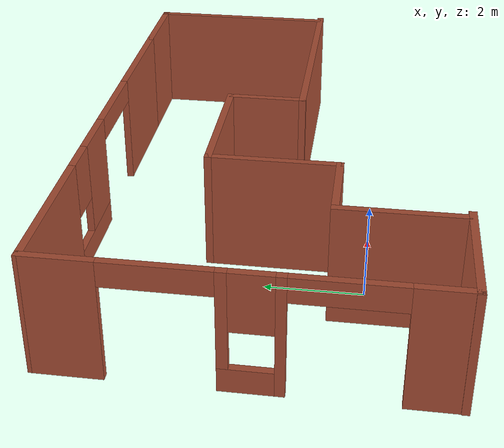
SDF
<?xml version='1.0'?>
<sdf version='1.6'>
  <model name='Building_1'>
    <pose frame=''>2.81093 1.97686 0 0 -0 0</pose>
    <link name='Wall_0'>
      <pose frame=''>-5.87854 -0.004049 0 0 -0 1.56878</pose>
      <visual name='Wall_0_Visual_0'>
        <pose frame=''>-3.29409 0 1.25 0 -0 0</pose>
        <geometry>
          <box>
            <size>1.11621 0.15 2.5</size>
          </box>
        </geometry>
        <material>
          <script>
            <uri>file://media/materials/scripts/gazebo.material</uri>
            <name>Gazebo/Bricks</name>
          </script>
          <ambient>1 1 1 1</ambient>
        </material>
        <meta>
          <layer>0</layer>
        </meta>
      </visual>
      <collision name='Wall_0_Collision_0'>
        <geometry>
          <box>
            <size>1.11621 0.15 2.5</size>
          </box>
        </geometry>
        <pose frame=''>-3.29409 0 1.25 0 -0 0</pose>
      </collision>
      <visual name='Wall_0_Visual_1'>
        <pose frame=''>-0.642825 0 1.25 0 -0 0</pose>
        <geometry>
          <box>
            <size>0.186316 0.15 2.5</size>
          </box>
        </geometry>
        <material>
          <script>
            <uri>file://media/materials/scripts/gazebo.material</uri>
            <name>Gazebo/Bricks</name>
          </script>
          <ambient>1 1 1 1</ambient>
        </material>
        <meta>
          <layer>0</layer>
        </meta>
      </visual>
      <collision name='Wall_0_Collision_1'>
        <geometry>
          <box>
            <size>0.186316 0.15 2.5</size>
          </box>
        </geometry>
        <pose frame=''>-0.642825 0 1.25 0 -0 0</pose>
      </collision>
      <visual name='Wall_0_Visual_2'>
        <pose frame=''>3.15413 0 1.25 0 -0 0</pose>
        <geometry>
          <box>
            <size>1.39612 0.15 2.5</size>
          </box>
        </geometry>
        <material>
          <script>
            <uri>file://media/materials/scripts/gazebo.material</uri>
            <name>Gazebo/Bricks</name>
          </script>
          <ambient>1 1 1 1</ambient>
        </material>
        <meta>
          <layer>0</layer>
        </meta>
      </visual>
      <collision name='Wall_0_Collision_2'>
        <geometry>
          <box>
            <size>1.39612 0.15 2.5</size>
          </box>
        </geometry>
        <pose frame=''>3.15413 0 1.25 0 -0 0</pose>
      </collision>
      <visual name='Wall_0_Visual_3'>
        <pose frame=''>-0.046797 0 0.25 0 -0 0</pose>
        <geometry>
          <box>
            <size>1.00574 0.15 0.5</size>
          </box>
        </geometry>
        <material>
          <script>
            <uri>file://media/materials/scripts/gazebo.material</uri>
            <name>Gazebo/Bricks</name>
          </script>
          <ambient>1 1 1 1</ambient>
        </material>
        <meta>
          <layer>0</layer>
        </meta>
      </visual>
      <collision name='Wall_0_Collision_3'>
        <geometry>
          <box>
            <size>1.00574 0.15 0.5</size>
          </box>
        </geometry>
        <pose frame=''>-0.046797 0 0.25 0 -0 0</pose>
      </collision>
      <visual name='Wall_0_Visual_4'>
        <pose frame=''>0.353203 0 1.5 0 -0 0</pose>
        <geometry>
          <box>
            <size>0.205741 0.15 2</size>
          </box>
        </geometry>
        <material>
          <script>
            <uri>file://media/materials/scripts/gazebo.material</uri>
            <name>Gazebo/Bricks</name>
          </script>
          <ambient>1 1 1 1</ambient>
        </material>
        <meta>
          <layer>0</layer>
        </meta>
      </visual>
      <collision name='Wall_0_Collision_4'>
        <geometry>
          <box>
            <size>0.205741 0.15 2</size>
          </box>
        </geometry>
        <pose frame=''>0.353203 0 1.5 0 -0 0</pose>
      </collision>
      <visual name='Wall_0_Visual_5'>
        <pose frame=''>-0.149667 0 1.9 0 -0 0</pose>
        <geometry>
          <box>
            <size>0.8 0.15 1.2</size>
          </box>
        </geometry>
        <material>
          <script>
            <uri>file://media/materials/scripts/gazebo.material</uri>
            <name>Gazebo/Bricks</name>
          </script>
          <ambient>1 1 1 1</ambient>
        </material>
        <meta>
          <layer>0</layer>
        </meta>
      </visual>
      <collision name='Wall_0_Collision_5'>
        <geometry>
          <box>
            <size>0.8 0.15 1.2</size>
          </box>
        </geometry>
        <pose frame=''>-0.149667 0 1.9 0 -0 0</pose>
      </collision>
      <visual name='Wall_0_Visual_6'>
        <pose frame=''>-1.73598 0 2.25 0 -0 0</pose>
        <geometry>
          <box>
            <size>2 0.15 0.5</size>
          </box>
        </geometry>
        <material>
          <script>
            <uri>file://media/materials/scripts/gazebo.material</uri>
            <name>Gazebo/Bricks</name>
          </script>
          <ambient>1 1 1 1</ambient>
        </material>
        <meta>
          <layer>0</layer>
        </meta>
      </visual>
      <collision name='Wall_0_Collision_6'>
        <geometry>
          <box>
            <size>2 0.15 0.5</size>
          </box>
        </geometry>
        <pose frame=''>-1.73598 0 2.25 0 -0 0</pose>
      </collision>
      <visual name='Wall_0_Visual_7'>
        <pose frame=''>1.45607 0 2.25 0 -0 0</pose>
        <geometry>
          <box>
            <size>2 0.15 0.5</size>
          </box>
        </geometry>
        <material>
          <script>
            <uri>file://media/materials/scripts/gazebo.material</uri>
            <name>Gazebo/Bricks</name>
          </script>
          <ambient>1 1 1 1</ambient>
        </material>
        <meta>
          <layer>0</layer>
        </meta>
      </visual>
      <collision name='Wall_0_Collision_7'>
        <geometry>
          <box>
            <size>2 0.15 0.5</size>
          </box>
        </geometry>
        <pose frame=''>1.45607 0 2.25 0 -0 0</pose>
      </collision>
    </link>
    <link name='Wall_1'>
      <pose frame=''>-0.970008 3.7847 0 0 -0 0.00236</pose>
      <visual name='Wall_1_Visual_0'>
        <pose frame=''>-3.40845 0 1.25 0 -0 0</pose>
        <geometry>
          <box>
            <size>3.13498 0.15 2.5</size>
          </box>
        </geometry>
        <material>
          <script>
            <uri>file://media/materials/scripts/gazebo.material</uri>
            <name>Gazebo/Bricks</name>
          </script>
          <ambient>1 1 1 1</ambient>
        </material>
        <meta>
          <layer>0</layer>
        </meta>
      </visual>
      <collision name='Wall_1_Collision_0'>
        <geometry>
          <box>
            <size>3.13498 0.15 2.5</size>
          </box>
        </geometry>
        <pose frame=''>-3.40845 0 1.25 0 -0 0</pose>
      </collision>
      <visual name='Wall_1_Visual_1'>
        <pose frame=''>3.58984 0 1.25 0 -0 0</pose>
        <geometry>
          <box>
            <size>2.77218 0.15 2.5</size>
          </box>
        </geometry>
        <material>
          <script>
            <uri>file://media/materials/scripts/gazebo.material</uri>
            <name>Gazebo/Bricks</name>
          </script>
          <ambient>1 1 1 1</ambient>
        </material>
        <meta>
          <layer>0</layer>
        </meta>
      </visual>
      <collision name='Wall_1_Collision_1'>
        <geometry>
          <box>
            <size>2.77218 0.15 2.5</size>
          </box>
        </geometry>
        <pose frame=''>3.58984 0 1.25 0 -0 0</pose>
      </collision>
      <visual name='Wall_1_Visual_2'>
        <pose frame=''>-0.818602 0 0.25 0 -0 0</pose>
        <geometry>
          <box>
            <size>2.04471 0.15 0.5</size>
          </box>
        </geometry>
        <material>
          <script>
            <uri>file://media/materials/scripts/gazebo.material</uri>
            <name>Gazebo/Bricks</name>
          </script>
          <ambient>1 1 1 1</ambient>
        </material>
        <meta>
          <layer>0</layer>
        </meta>
      </visual>
      <collision name='Wall_1_Collision_2'>
        <geometry>
          <box>
            <size>2.04471 0.15 0.5</size>
          </box>
        </geometry>
        <pose frame=''>-0.818602 0 0.25 0 -0 0</pose>
      </collision>
      <visual name='Wall_1_Visual_3'>
        <pose frame=''>-0.418602 0 1.5 0 -0 0</pose>
        <geometry>
          <box>
            <size>1.24471 0.15 2</size>
          </box>
        </geometry>
        <material>
          <script>
            <uri>file://media/materials/scripts/gazebo.material</uri>
            <name>Gazebo/Bricks</name>
          </script>
          <ambient>1 1 1 1</ambient>
        </material>
        <meta>
          <layer>0</layer>
        </meta>
      </visual>
      <collision name='Wall_1_Collision_3'>
        <geometry>
          <box>
            <size>1.24471 0.15 2</size>
          </box>
        </geometry>
        <pose frame=''>-0.418602 0 1.5 0 -0 0</pose>
      </collision>
      <visual name='Wall_1_Visual_4'>
        <pose frame=''>-1.44096 0 1.9 0 -0 0</pose>
        <geometry>
          <box>
            <size>0.8 0.15 1.2</size>
          </box>
        </geometry>
        <material>
          <script>
            <uri>file://media/materials/scripts/gazebo.material</uri>
            <name>Gazebo/Bricks</name>
          </script>
          <ambient>1 1 1 1</ambient>
        </material>
        <meta>
          <layer>0</layer>
        </meta>
      </visual>
      <collision name='Wall_1_Collision_4'>
        <geometry>
          <box>
            <size>0.8 0.15 1.2</size>
          </box>
        </geometry>
        <pose frame=''>-1.44096 0 1.9 0 -0 0</pose>
      </collision>
      <visual name='Wall_1_Visual_5'>
        <pose frame=''>1.20375 0 2.25 0 -0 0</pose>
        <geometry>
          <box>
            <size>2 0.15 0.5</size>
          </box>
        </geometry>
        <material>
          <script>
            <uri>file://media/materials/scripts/gazebo.material</uri>
            <name>Gazebo/Bricks</name>
          </script>
          <ambient>1 1 1 1</ambient>
        </material>
        <meta>
          <layer>0</layer>
        </meta>
      </visual>
      <collision name='Wall_1_Collision_5'>
        <geometry>
          <box>
            <size>2 0.15 0.5</size>
          </box>
        </geometry>
        <pose frame=''>1.20375 0 2.25 0 -0 0</pose>
      </collision>
    </link>
    <link name='Wall_10'>
      <collision name='Wall_10_Collision'>
        <geometry>
          <box>
            <size>1.75 0.15 2.5</size>
          </box>
        </geometry>
        <pose frame=''>0 0 1.25 0 -0 0</pose>
      </collision>
      <visual name='Wall_10_Visual'>
        <pose frame=''>0 0 1.25 0 -0 0</pose>
        <geometry>
          <box>
            <size>1.75 0.15 2.5</size>
          </box>
        </geometry>
        <material>
          <script>
            <uri>file://media/materials/scripts/gazebo.material</uri>
            <name>Gazebo/Bricks</name>
          </script>
          <ambient>1 1 1 1</ambient>
        </material>
        <meta>
          <layer>0</layer>
        </meta>
      </visual>
      <pose frame=''>0.801348 0.446353 0 0 -0 1.5708</pose>
    </link>
    <link name='Wall_11'>
      <collision name='Wall_11_Collision'>
        <geometry>
          <box>
            <size>3 0.15 2.5</size>
          </box>
        </geometry>
        <pose frame=''>0 0 1.25 0 -0 0</pose>
      </collision>
      <visual name='Wall_11_Visual'>
        <pose frame=''>0 0 1.25 0 -0 0</pose>
        <geometry>
          <box>
            <size>3 0.15 2.5</size>
          </box>
        </geometry>
        <material>
          <script>
            <uri>file://media/materials/scripts/gazebo.material</uri>
            <name>Gazebo/Bricks</name>
          </script>
          <ambient>1 1 1 1</ambient>
        </material>
        <meta>
          <layer>0</layer>
        </meta>
      </visual>
      <pose frame=''>-0.623652 1.24635 0 0 -0 3.14159</pose>
    </link>
    <link name='Wall_12'>
      <collision name='Wall_12_Collision'>
        <geometry>
          <box>
            <size>2.75 0.15 2.5</size>
          </box>
        </geometry>
        <pose frame=''>0 0 1.25 0 -0 0</pose>
      </collision>
      <visual name='Wall_12_Visual'>
        <pose frame=''>0 0 1.25 0 -0 0</pose>
        <geometry>
          <box>
            <size>2.75 0.15 2.5</size>
          </box>
        </geometry>
        <material>
          <script>
            <uri>file://media/materials/scripts/gazebo.material</uri>
            <name>Gazebo/Bricks</name>
          </script>
          <ambient>1 1 1 1</ambient>
        </material>
        <meta>
          <layer>0</layer>
        </meta>
      </visual>
      <pose frame=''>-2.04865 -0.053647 0 0 -0 -1.5708</pose>
    </link>
    <link name='Wall_13'>
      <collision name='Wall_13_Collision'>
        <geometry>
          <box>
            <size>1.74486 0.15 2.5</size>
          </box>
        </geometry>
        <pose frame=''>0 0 1.25 0 -0 0</pose>
      </collision>
      <visual name='Wall_13_Visual'>
        <pose frame=''>0 0 1.25 0 -0 0</pose>
        <geometry>
          <box>
            <size>1.74486 0.15 2.5</size>
          </box>
        </geometry>
        <material>
          <script>
            <uri>file://media/materials/scripts/gazebo.material</uri>
            <name>Gazebo/Bricks</name>
          </script>
          <ambient>1 1 1 1</ambient>
        </material>
        <meta>
          <layer>0</layer>
        </meta>
      </visual>
      <pose frame=''>-2.84608 -1.35365 0 0 -0 3.14159</pose>
    </link>
    <link name='Wall_14'>
      <collision name='Wall_14_Collision'>
        <geometry>
          <box>
            <size>2.5 0.15 2.5</size>
          </box>
        </geometry>
        <pose frame=''>0 0 1.25 0 -0 0</pose>
      </collision>
      <visual name='Wall_14_Visual'>
        <pose frame=''>0 0 1.25 0 -0 0</pose>
        <geometry>
          <box>
            <size>2.5 0.15 2.5</size>
          </box>
        </geometry>
        <material>
          <script>
            <uri>file://media/materials/scripts/gazebo.material</uri>
            <name>Gazebo/Bricks</name>
          </script>
          <ambient>1 1 1 1</ambient>
        </material>
        <meta>
          <layer>0</layer>
        </meta>
      </visual>
      <pose frame=''>-3.661 -2.52865 0 0 -0 -1.5708</pose>
    </link>
    <link name='Wall_16'>
      <collision name='Wall_16_Collision'>
        <geometry>
          <box>
            <size>2.5 0.15 2.5</size>
          </box>
        </geometry>
        <pose frame=''>0 0 1.25 0 -0 0</pose>
      </collision>
      <visual name='Wall_16_Visual'>
        <pose frame=''>0 0 1.25 0 -0 0</pose>
        <geometry>
          <box>
            <size>2.5 0.15 2.5</size>
          </box>
        </geometry>
        <material>
          <script>
            <uri>file://media/materials/scripts/gazebo.material</uri>
            <name>Gazebo/Bricks</name>
          </script>
          <ambient>1 1 1 1</ambient>
        </material>
        <meta>
          <layer>0</layer>
        </meta>
      </visual>
      <pose frame=''>-4.72635 -3.79644 0 0 -0 0</pose>
    </link>
    <link name='Wall_3'>
      <collision name='Wall_3_Collision'>
        <geometry>
          <box>
            <size>2 0.15 2.5</size>
          </box>
        </geometry>
        <pose frame=''>0 0 1.25 0 -0 0</pose>
      </collision>
      <visual name='Wall_3_Visual'>
        <pose frame=''>0 0 1.25 0 -0 0</pose>
        <geometry>
          <box>
            <size>2 0.15 2.5</size>
          </box>
        </geometry>
        <material>
          <script>
            <uri>file://media/materials/scripts/gazebo.material</uri>
            <name>Gazebo/Bricks</name>
          </script>
          <ambient>1 1 1 1</ambient>
        </material>
        <meta>
          <layer>0</layer>
        </meta>
      </visual>
      <pose frame=''>4.83278 3.79627 0 0 -0 0</pose>
    </link>
    <link name='Wall_4'>
      <collision name='Wall_4_Collision'>
        <geometry>
          <box>
            <size>4.25 0.15 2.5</size>
          </box>
        </geometry>
        <pose frame=''>0 0 1.25 0 -0 0</pose>
      </collision>
      <visual name='Wall_4_Visual'>
        <pose frame=''>0 0 1.25 0 -0 0</pose>
        <geometry>
          <box>
            <size>4.25 0.15 2.5</size>
          </box>
        </geometry>
        <material>
          <script>
            <uri>file://media/materials/scripts/gazebo.material</uri>
            <name>Gazebo/Bricks</name>
          </script>
          <ambient>1 1 1 1</ambient>
        </material>
        <meta>
          <layer>0</layer>
        </meta>
      </visual>
      <pose frame=''>5.78091 1.74627 0 0 -0 -1.5708</pose>
    </link>
    <link name='Wall_9'>
      <collision name='Wall_9_Collision'>
        <geometry>
          <box>
            <size>5.25 0.15 2.5</size>
          </box>
        </geometry>
        <pose frame=''>0 0 1.25 0 -0 0</pose>
      </collision>
      <visual name='Wall_9_Visual'>
        <pose frame=''>0 0 1.25 0 -0 0</pose>
        <geometry>
          <box>
            <size>5.25 0.15 2.5</size>
          </box>
        </geometry>
        <material>
          <script>
            <uri>file://media/materials/scripts/gazebo.material</uri>
            <name>Gazebo/Bricks</name>
          </script>
          <ambient>1 1 1 1</ambient>
        </material>
        <meta>
          <layer>0</layer>
        </meta>
      </visual>
      <pose frame=''>3.35135 -0.353647 0 0 -0 3.14159</pose>
    </link>
    <static>1</static>
  </model>
</sdf>
